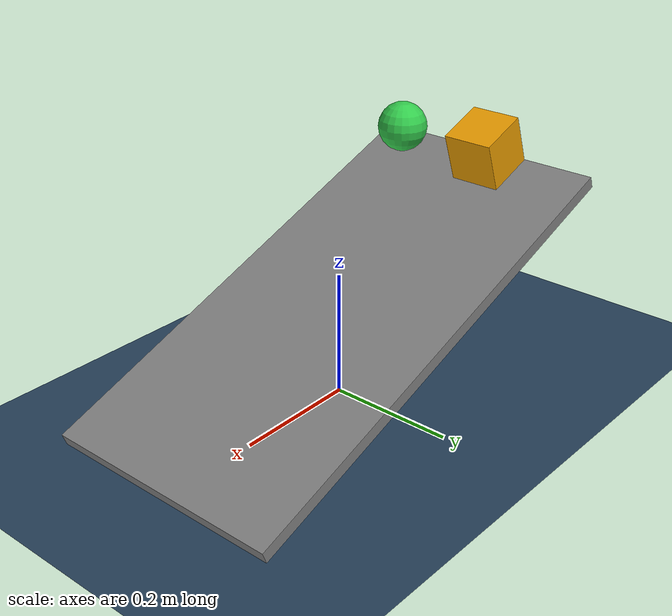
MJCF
<mujoco model="contact_sensor">
  <statistic center="0 0 0.1" extent="0.6" meansize=".05"/>

  <visual>
    <headlight diffuse="0.6 0.6 0.6" ambient="0.3 0.3 0.3" specular="0 0 0"/>
    <rgba haze="0.15 0.25 0.35 1"/>
    <global azimuth="-20" elevation="-20" ellipsoidinertia="true"/>
  </visual>

  <asset>
    <texture type="skybox" builtin="gradient" rgb1="0.3 0.5 0.7" rgb2="0 0 0" width="512" height="3072"/>
    <texture type="2d" name="groundplane" builtin="checker" mark="edge" rgb1="0.2 0.3 0.4" rgb2="0.1 0.2 0.3"
      markrgb="0.8 0.8 0.8" width="300" height="300"/>
    <material name="groundplane" texture="groundplane" texuniform="true" texrepeat="5 5" reflectance="0.2"/>
  </asset>

  <option gravity="0 0 -9.81" timestep="0.002"/>

  <worldbody>
    <light pos="0 0 1.5" dir="0 0 -1" directional="true"/>
    <geom name="floor" size="0 0 0.05" type="plane" material="groundplane"/>

    <!-- A tilted ramp: the box slides down (low friction), while the ball rolls. -->
    <geom name="ramp" type="box" pos="0 0 0.15" euler="0 20 0" size="0.4 0.2 0.01" rgba="0.5 0.5 0.5 1"/>

    <body name="box" pos="-0.25 0.08 0.35" euler="0 20 0">
      <freejoint/>
      <!-- priority makes this geom's friction win over the ramp's (default is the max of both). -->
      <geom name="box" type="box" size="0.04 0.04 0.04" rgba="0.9 0.6 0 1" mass="1" friction="0.2" priority="1"/>
    </body>
    <body name="ball" pos="-0.25 -0.08 0.35">
      <freejoint/>
      <geom name="ball" type="sphere" size="0.04" rgba="0.2 0.8 0.3 1" mass="0.5"/>
    </body>
  </worldbody>

  <sensor>
    <contact name="box_ramp" geom1="box" geom2="ramp" num="1" data="found force" reduce="netforce"/>
    <contact name="box_floor" geom1="box" geom2="floor" num="1" data="found force" reduce="netforce"/>
    <contact name="ball_any" geom1="ball" num="1" data="found dist normal" reduce="mindist"/>
    <framelinvel name="box_vel" objtype="body" objname="box"/>
    <frameangvel name="ball_angvel" objtype="body" objname="ball"/>
  </sensor>
</mujoco>
